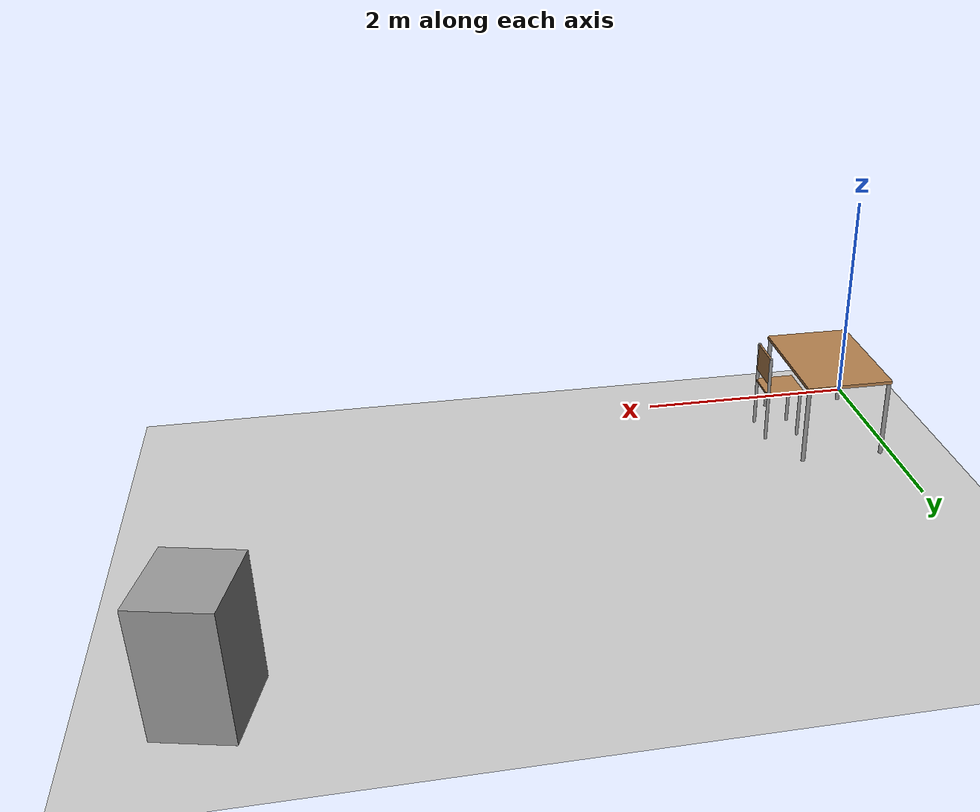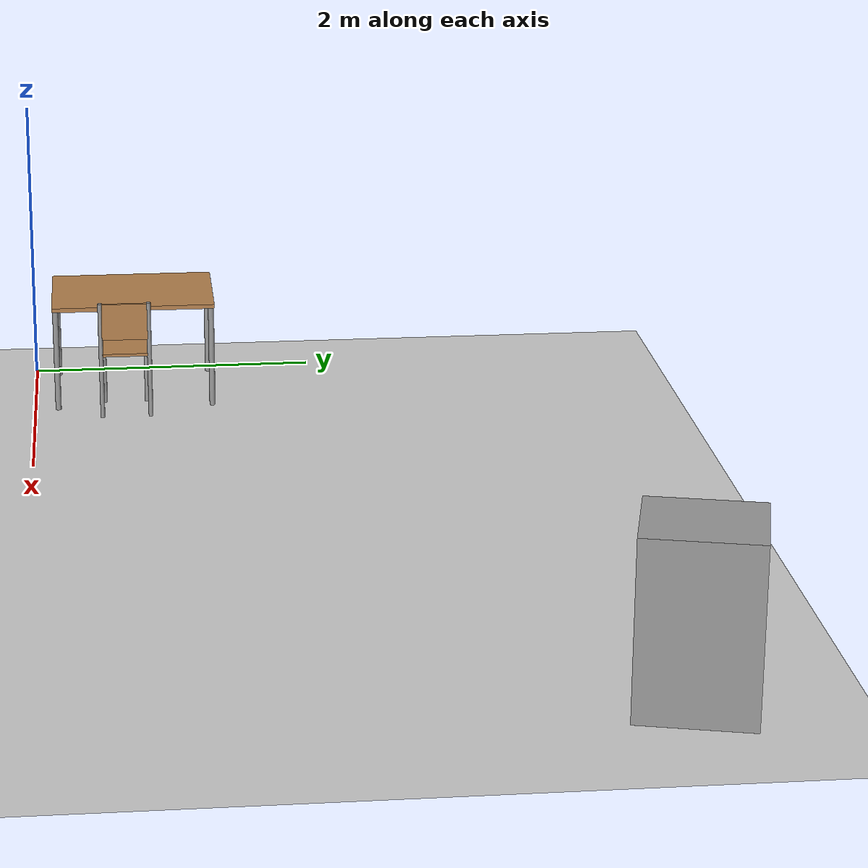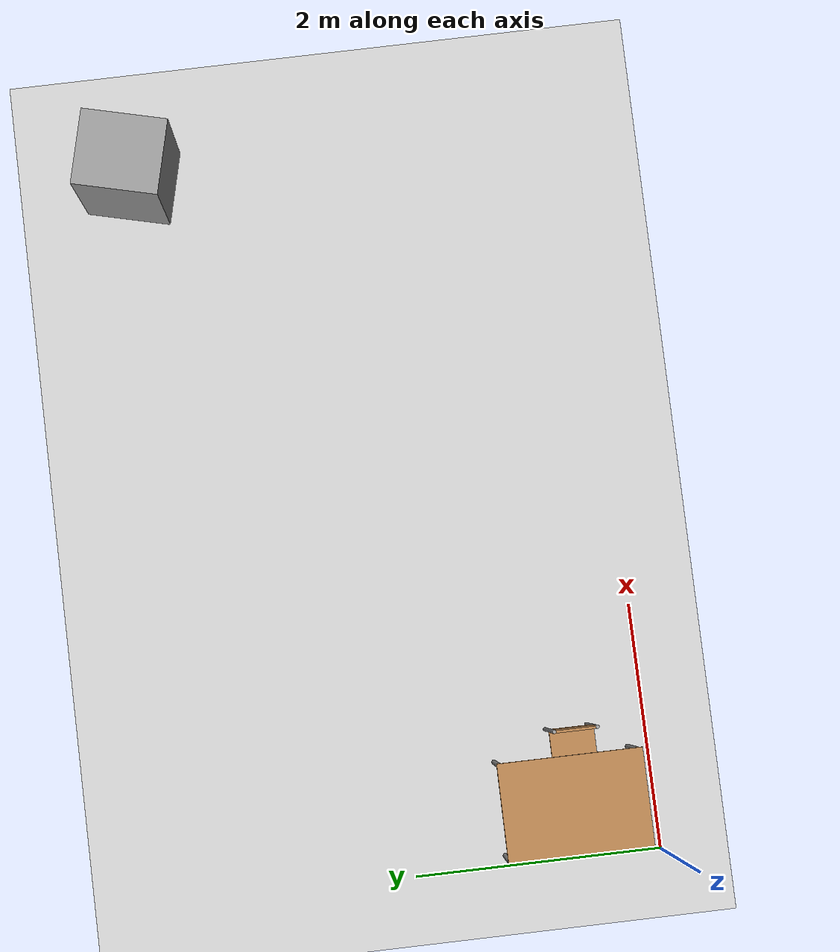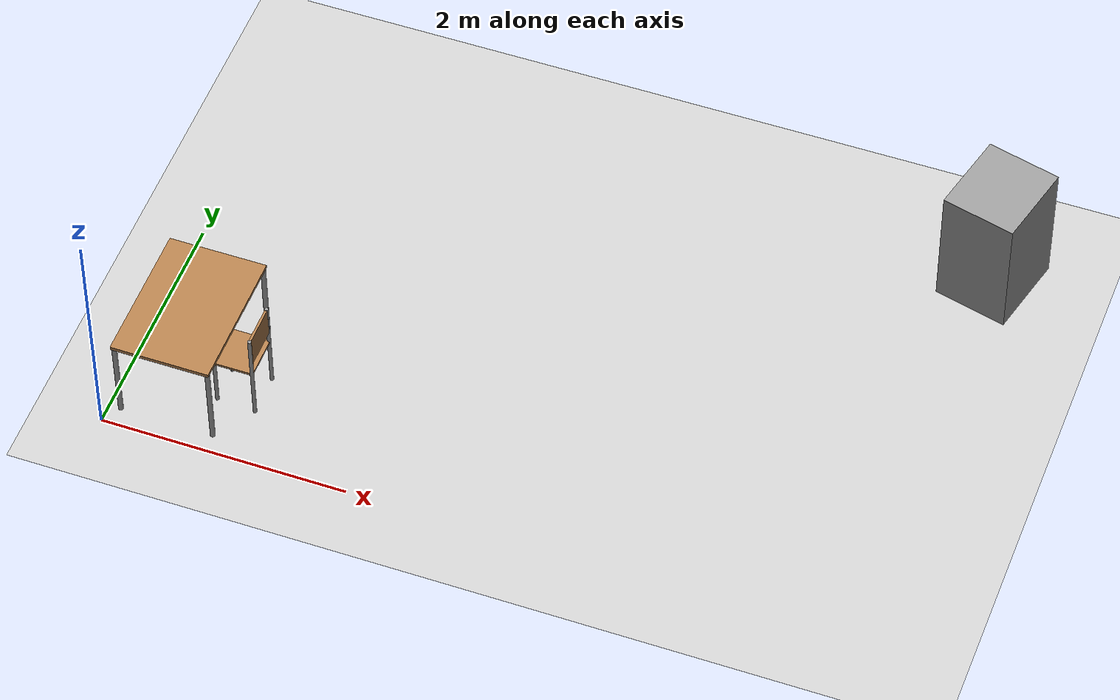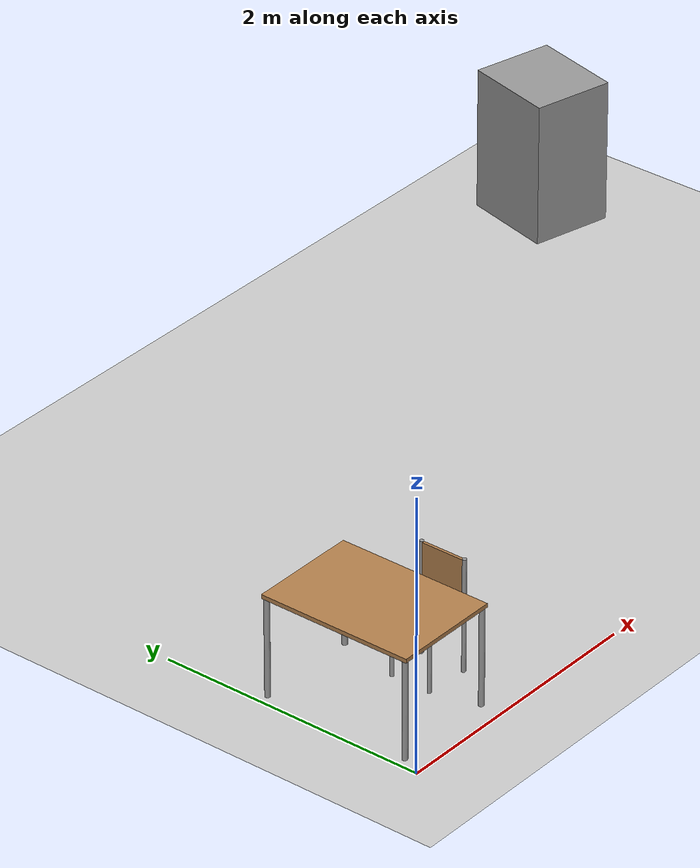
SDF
<sdf version="1.7">
 <world name="default">
  <model name="ground_plane">
   <static>1</static>
   <link name="link">
    <collision name="collision">
     <geometry><plane><normal>0 0 1</normal><size>100 100</size></plane></geometry>
     <surface>
      <contact><collide_bitmask>65535</collide_bitmask></contact>
      <friction><ode><mu>100</mu><mu2>50</mu2></ode></friction>
     </surface>
    </collision>
    <visual name="visual">
     <cast_shadows>0</cast_shadows>
     <geometry><plane><normal>0 0 1</normal><size>100 100</size></plane></geometry>
     <material>
      <script><uri>file://media/materials/scripts/gazebo.material</uri><name>Gazebo/Grey</name></script>
     </material>
    </visual>
   </link>
  </model>
  <model name="table_mod">
   <link name="link">
    <inertial>
     <mass>1</mass>
     <inertia><ixx>1</ixx><ixy>0</ixy><ixz>0</ixz><iyy>1</iyy><iyz>0</iyz><izz>1</izz></inertia>
    </inertial>
    <visual name="visual1">
     <pose>0 0 0.87 0 -0 0</pose>
     <geometry><box><size>1.15 0.8 0.03</size></box></geometry>
     <material>
      <script><uri>file://media/materials/scripts/gazebo.material</uri><name>Gazebo/Wood</name></script>
      <shader type="pixel"><normal_map>__default__</normal_map></shader>
      <ambient>1 1 1 1</ambient>
      <diffuse>1 1 1 1</diffuse>
      <specular>0.2 0.2 0.2 1</specular>
      <emissive>0 0 0 1</emissive>
     </material>
    </visual>
    <visual name="back_right_leg">
     <pose>-0.55 -0.38 0.5 0 -0 0</pose>
     <geometry><cylinder><radius>0.02</radius><length>0.75</length></cylinder></geometry>
     <material>
      <script><uri>file://media/materials/scripts/gazebo.material</uri><name>Gazebo/Grey</name></script>
      <shader type="pixel"><normal_map>__default__</normal_map></shader>
      <ambient>0.3 0.3 0.3 1</ambient>
      <diffuse>0.7 0.7 0.7 1</diffuse>
      <specular>0.01 0.01 0.01 1</specular>
      <emissive>0 0 0 1</emissive>
     </material>
    </visual>
    <visual name="front_right_leg">
     <pose>0.55 -0.38 0.5 0 -0 0</pose>
     <geometry><cylinder><radius>0.02</radius><length>0.75</length></cylinder></geometry>
     <material>
      <script><uri>file://media/materials/scripts/gazebo.material</uri><name>Gazebo/Grey</name></script>
      <shader type="pixel"><normal_map>__default__</normal_map></shader>
      <ambient>0.3 0.3 0.3 1</ambient>
      <diffuse>0.7 0.7 0.7 1</diffuse>
      <specular>0.01 0.01 0.01 1</specular>
      <emissive>0 0 0 1</emissive>
     </material>
    </visual>
    <visual name="back_left_leg">
     <pose>-0.55 0.38 0.5 0 -0 0</pose>
     <geometry><cylinder><radius>0.02</radius><length>0.75</length></cylinder></geometry>
     <material>
      <script><uri>file://media/materials/scripts/gazebo.material</uri><name>Gazebo/Grey</name></script>
      <shader type="pixel"><normal_map>__default__</normal_map></shader>
      <ambient>0.3 0.3 0.3 1</ambient>
      <diffuse>0.7 0.7 0.7 1</diffuse>
      <specular>0.01 0.01 0.01 1</specular>
      <emissive>0 0 0 1</emissive>
     </material>
    </visual>
    <visual name="front_left_leg">
     <pose>0.55 0.38 0.5 0 -0 0</pose>
     <geometry><cylinder><radius>0.02</radius><length>0.75</length></cylinder></geometry>
     <material>
      <script><uri>file://media/materials/scripts/gazebo.material</uri><name>Gazebo/Grey</name></script>
      <shader type="pixel"><normal_map>__default__</normal_map></shader>
      <ambient>0.3 0.3 0.3 1</ambient>
      <diffuse>0.7 0.7 0.7 1</diffuse>
      <specular>0.01 0.01 0.01 1</specular>
      <emissive>0 0 0 1</emissive>
     </material>
    </visual>
    <collision name="surface">
     <pose>0 0 0.87 0 -0 0</pose>
     <geometry><box><size>1.15 0.8 0.03</size></box></geometry>
     <surface>
      <friction>
       <ode><mu>0.6</mu><mu2>0.6</mu2><fdir1>0 0 0</fdir1><slip1>0</slip1><slip2>0</slip2></ode>
       <torsional>
        <coefficient>1</coefficient>
        <patch_radius>0</patch_radius>
        <surface_radius>0</surface_radius>
        <use_patch_radius>1</use_patch_radius>
        <ode><slip>0</slip></ode>
       </torsional>
      </friction>
      <bounce><restitution_coefficient>0</restitution_coefficient><threshold>1e+06</threshold></bounce>
      <contact>
       <collide_without_contact>0</collide_without_contact>
       <collide_without_contact_bitmask>1</collide_without_contact_bitmask>
       <collide_bitmask>1</collide_bitmask>
       <ode>
        <soft_cfm>0</soft_cfm>
        <soft_erp>0.2</soft_erp>
        <kp>1e+13</kp>
        <kd>1</kd>
        <max_vel>0.01</max_vel>
        <min_depth>0</min_depth>
       </ode>
       <bullet>
        <split_impulse>1</split_impulse>
        <split_impulse_penetration_threshold>-0.01</split_impulse_penetration_threshold>
        <soft_cfm>0</soft_cfm>
        <soft_erp>0.2</soft_erp>
        <kp>1e+13</kp>
        <kd>1</kd>
       </bullet>
      </contact>
     </surface>
    </collision>
    <collision name="back_right_leg">
     <pose>-0.55 -0.38 0.5 0 -0 0</pose>
     <geometry><cylinder><radius>0.02</radius><length>0.75</length></cylinder></geometry>
     <surface>
      <friction>
       <ode><mu>1</mu><mu2>1</mu2><fdir1>0 0 0</fdir1><slip1>0</slip1><slip2>0</slip2></ode>
       <torsional>
        <coefficient>1</coefficient>
        <patch_radius>0</patch_radius>
        <surface_radius>0</surface_radius>
        <use_patch_radius>1</use_patch_radius>
        <ode><slip>0</slip></ode>
       </torsional>
      </friction>
      <bounce><restitution_coefficient>0</restitution_coefficient><threshold>1e+06</threshold></bounce>
      <contact>
       <collide_without_contact>0</collide_without_contact>
       <collide_without_contact_bitmask>1</collide_without_contact_bitmask>
       <collide_bitmask>1</collide_bitmask>
       <ode>
        <soft_cfm>0</soft_cfm>
        <soft_erp>0.2</soft_erp>
        <kp>1e+13</kp>
        <kd>1</kd>
        <max_vel>0.01</max_vel>
        <min_depth>0</min_depth>
       </ode>
       <bullet>
        <split_impulse>1</split_impulse>
        <split_impulse_penetration_threshold>-0.01</split_impulse_penetration_threshold>
        <soft_cfm>0</soft_cfm>
        <soft_erp>0.2</soft_erp>
        <kp>1e+13</kp>
        <kd>1</kd>
       </bullet>
      </contact>
     </surface>
    </collision>
    <collision name="back_left_leg">
     <pose>-0.55 0.38 0.5 0 -0 0</pose>
     <geometry><cylinder><radius>0.02</radius><length>0.75</length></cylinder></geometry>
     <surface>
      <friction>
       <ode><mu>1</mu><mu2>1</mu2><fdir1>0 0 0</fdir1><slip1>0</slip1><slip2>0</slip2></ode>
       <torsional>
        <coefficient>1</coefficient>
        <patch_radius>0</patch_radius>
        <surface_radius>0</surface_radius>
        <use_patch_radius>1</use_patch_radius>
        <ode><slip>0</slip></ode>
       </torsional>
      </friction>
      <bounce><restitution_coefficient>0</restitution_coefficient><threshold>1e+06</threshold></bounce>
      <contact>
       <collide_without_contact>0</collide_without_contact>
       <collide_without_contact_bitmask>1</collide_without_contact_bitmask>
       <collide_bitmask>1</collide_bitmask>
       <ode>
        <soft_cfm>0</soft_cfm>
        <soft_erp>0.2</soft_erp>
        <kp>1e+13</kp>
        <kd>1</kd>
        <max_vel>0.01</max_vel>
        <min_depth>0</min_depth>
       </ode>
       <bullet>
        <split_impulse>1</split_impulse>
        <split_impulse_penetration_threshold>-0.01</split_impulse_penetration_threshold>
        <soft_cfm>0</soft_cfm>
        <soft_erp>0.2</soft_erp>
        <kp>1e+13</kp>
        <kd>1</kd>
       </bullet>
      </contact>
     </surface>
    </collision>
    <collision name="front_left_leg">
     <pose>0.55 0.38 0.5 0 -0 0</pose>
     <geometry><cylinder><radius>0.02</radius><length>0.75</length></cylinder></geometry>
     <surface>
      <friction>
       <ode><mu>1</mu><mu2>1</mu2><fdir1>0 0 0</fdir1><slip1>0</slip1><slip2>0</slip2></ode>
       <torsional>
        <coefficient>1</coefficient>
        <patch_radius>0</patch_radius>
        <surface_radius>0</surface_radius>
        <use_patch_radius>1</use_patch_radius>
        <ode><slip>0</slip></ode>
       </torsional>
      </friction>
      <bounce><restitution_coefficient>0</restitution_coefficient><threshold>1e+06</threshold></bounce>
      <contact>
       <collide_without_contact>0</collide_without_contact>
       <collide_without_contact_bitmask>1</collide_without_contact_bitmask>
       <collide_bitmask>1</collide_bitmask>
       <ode>
        <soft_cfm>0</soft_cfm>
        <soft_erp>0.2</soft_erp>
        <kp>1e+13</kp>
        <kd>1</kd>
        <max_vel>0.01</max_vel>
        <min_depth>0</min_depth>
       </ode>
       <bullet>
        <split_impulse>1</split_impulse>
        <split_impulse_penetration_threshold>-0.01</split_impulse_penetration_threshold>
        <soft_cfm>0</soft_cfm>
        <soft_erp>0.2</soft_erp>
        <kp>1e+13</kp>
        <kd>1</kd>
       </bullet>
      </contact>
     </surface>
    </collision>
    <collision name="front_right_leg">
     <pose>0.55 -0.38 0.5 0 -0 0</pose>
     <geometry><cylinder><radius>0.02</radius><length>0.75</length></cylinder></geometry>
     <surface>
      <friction>
       <ode><mu>1</mu><mu2>1</mu2><fdir1>0 0 0</fdir1><slip1>0</slip1><slip2>0</slip2></ode>
       <torsional>
        <coefficient>1</coefficient>
        <patch_radius>0</patch_radius>
        <surface_radius>0</surface_radius>
        <use_patch_radius>1</use_patch_radius>
        <ode><slip>0</slip></ode>
       </torsional>
      </friction>
      <bounce><restitution_coefficient>0</restitution_coefficient><threshold>1e+06</threshold></bounce>
      <contact>
       <collide_without_contact>0</collide_without_contact>
       <collide_without_contact_bitmask>1</collide_without_contact_bitmask>
       <collide_bitmask>1</collide_bitmask>
       <ode>
        <soft_cfm>0</soft_cfm>
        <soft_erp>0.2</soft_erp>
        <kp>1e+13</kp>
        <kd>1</kd>
        <max_vel>0.01</max_vel>
        <min_depth>0</min_depth>
       </ode>
       <bullet>
        <split_impulse>1</split_impulse>
        <split_impulse_penetration_threshold>-0.01</split_impulse_penetration_threshold>
        <soft_cfm>0</soft_cfm>
        <soft_erp>0.2</soft_erp>
        <kp>1e+13</kp>
        <kd>1</kd>
       </bullet>
      </contact>
     </surface>
    </collision>
   </link>
   <static>1</static>
   <pose>0.467778 0.712362 -0.134214 0 0 -1.5708</pose>
  </model>
  <model name="chair_mod_0_clone">
   <link name="link">
    <inertial>
     <mass>1</mass>
     <inertia><ixx>1</ixx><ixy>0</ixy><ixz>0</ixz><iyy>1</iyy><iyz>0</iyz><izz>1</izz></inertia>
    </inertial>
    <visual name="back_right_leg">
     <pose>-0.17 -0.17 0.42 0 -0 0</pose>
     <geometry><cylinder><radius>0.015</radius><length>0.84</length></cylinder></geometry>
     <material>
      <script><uri>file://media/materials/scripts/gazebo.material</uri><name>Gazebo/Grey</name></script>
      <shader type="pixel"><normal_map>__default__</normal_map></shader>
      <ambient>0.3 0.3 0.3 1</ambient>
      <diffuse>0.7 0.7 0.7 1</diffuse>
      <specular>0.01 0.01 0.01 1</specular>
      <emissive>0 0 0 1</emissive>
     </material>
    </visual>
    <visual name="back_left_leg">
     <pose>-0.15 0.15 0.23 0 -0 0</pose>
     <geometry><cylinder><radius>0.015</radius><length>0.46</length></cylinder></geometry>
     <material>
      <script><uri>file://media/materials/scripts/gazebo.material</uri><name>Gazebo/Grey</name></script>
      <shader type="pixel"><normal_map>__default__</normal_map></shader>
      <ambient>0.3 0.3 0.3 1</ambient>
      <diffuse>0.7 0.7 0.7 1</diffuse>
      <specular>0.01 0.01 0.01 1</specular>
      <emissive>0 0 0 1</emissive>
     </material>
    </visual>
    <visual name="visual1">
     <pose>0 0 0.46 0 -0 0</pose>
     <geometry><box><size>0.36 0.36 0.02</size></box></geometry>
     <material>
      <script><uri>file://media/materials/scripts/gazebo.material</uri><name>Gazebo/Wood</name></script>
      <shader type="pixel"><normal_map>__default__</normal_map></shader>
      <ambient>1 1 1 1</ambient>
      <diffuse>1 1 1 1</diffuse>
      <specular>0.2 0.2 0.2 1</specular>
      <emissive>0 0 0 1</emissive>
     </material>
    </visual>
    <visual name="ModelPreview_1::link::visual_5">
     <pose>0 -0.17 0.705 1.56 -0 0</pose>
     <geometry><box><size>0.36 0.26 0.02</size></box></geometry>
     <material>
      <script><uri>file://media/materials/scripts/gazebo.material</uri><name>Gazebo/Wood</name></script>
      <shader type="pixel"><normal_map>__default__</normal_map></shader>
      <ambient>1 1 1 1</ambient>
      <diffuse>1 1 1 1</diffuse>
      <specular>0.2 0.2 0.2 1</specular>
      <emissive>0 0 0 1</emissive>
     </material>
    </visual>
    <visual name="front_left_leg">
     <pose>0.15 0.15 0.23 0 -0 0</pose>
     <geometry><cylinder><radius>0.015</radius><length>0.46</length></cylinder></geometry>
     <material>
      <script><uri>file://media/materials/scripts/gazebo.material</uri><name>Gazebo/Grey</name></script>
      <shader type="pixel"><normal_map>__default__</normal_map></shader>
      <ambient>0.3 0.3 0.3 1</ambient>
      <diffuse>0.7 0.7 0.7 1</diffuse>
      <specular>0.01 0.01 0.01 1</specular>
      <emissive>0 0 0 1</emissive>
     </material>
    </visual>
    <visual name="front_right_leg">
     <pose>0.17 -0.17 0.42 0 -0 0</pose>
     <geometry><cylinder><radius>0.015</radius><length>0.84</length></cylinder></geometry>
     <material>
      <script><uri>file://media/materials/scripts/gazebo.material</uri><name>Gazebo/Grey</name></script>
      <shader type="pixel"><normal_map>__default__</normal_map></shader>
      <ambient>0.3 0.3 0.3 1</ambient>
      <diffuse>0.7 0.7 0.7 1</diffuse>
      <specular>0.01 0.01 0.01 1</specular>
      <emissive>0 0 0 1</emissive>
     </material>
    </visual>
    <collision name="front_right_leg">
     <pose>0.17 -0.17 0.42 0 -0 0</pose>
     <geometry><cylinder><radius>0.015</radius><length>0.84</length></cylinder></geometry>
     <surface>
      <friction>
       <ode><mu>1</mu><mu2>1</mu2><fdir1>0 0 0</fdir1><slip1>0</slip1><slip2>0</slip2></ode>
       <torsional>
        <coefficient>1</coefficient>
        <patch_radius>0</patch_radius>
        <surface_radius>0</surface_radius>
        <use_patch_radius>1</use_patch_radius>
        <ode><slip>0</slip></ode>
       </torsional>
      </friction>
      <bounce><restitution_coefficient>0</restitution_coefficient><threshold>1e+06</threshold></bounce>
      <contact>
       <collide_without_contact>0</collide_without_contact>
       <collide_without_contact_bitmask>1</collide_without_contact_bitmask>
       <collide_bitmask>1</collide_bitmask>
       <ode>
        <soft_cfm>0</soft_cfm>
        <soft_erp>0.2</soft_erp>
        <kp>1e+13</kp>
        <kd>1</kd>
        <max_vel>0.01</max_vel>
        <min_depth>0</min_depth>
       </ode>
       <bullet>
        <split_impulse>1</split_impulse>
        <split_impulse_penetration_threshold>-0.01</split_impulse_penetration_threshold>
        <soft_cfm>0</soft_cfm>
        <soft_erp>0.2</soft_erp>
        <kp>1e+13</kp>
        <kd>1</kd>
       </bullet>
      </contact>
     </surface>
    </collision>
    <collision name="back_right_leg">
     <pose>-0.17 -0.17 0.42 0 -0 0</pose>
     <geometry><cylinder><radius>0.015</radius><length>0.84</length></cylinder></geometry>
     <surface>
      <friction>
       <ode><mu>1</mu><mu2>1</mu2><fdir1>0 0 0</fdir1><slip1>0</slip1><slip2>0</slip2></ode>
       <torsional>
        <coefficient>1</coefficient>
        <patch_radius>0</patch_radius>
        <surface_radius>0</surface_radius>
        <use_patch_radius>1</use_patch_radius>
        <ode><slip>0</slip></ode>
       </torsional>
      </friction>
      <bounce><restitution_coefficient>0</restitution_coefficient><threshold>1e+06</threshold></bounce>
      <contact>
       <collide_without_contact>0</collide_without_contact>
       <collide_without_contact_bitmask>1</collide_without_contact_bitmask>
       <collide_bitmask>1</collide_bitmask>
       <ode>
        <soft_cfm>0</soft_cfm>
        <soft_erp>0.2</soft_erp>
        <kp>1e+13</kp>
        <kd>1</kd>
        <max_vel>0.01</max_vel>
        <min_depth>0</min_depth>
       </ode>
       <bullet>
        <split_impulse>1</split_impulse>
        <split_impulse_penetration_threshold>-0.01</split_impulse_penetration_threshold>
        <soft_cfm>0</soft_cfm>
        <soft_erp>0.2</soft_erp>
        <kp>1e+13</kp>
        <kd>1</kd>
       </bullet>
      </contact>
     </surface>
    </collision>
    <collision name="back_left_leg">
     <pose>-0.15 0.15 0.23 0 -0 0</pose>
     <geometry><cylinder><radius>0.015</radius><length>0.46</length></cylinder></geometry>
     <surface>
      <friction>
       <ode><mu>1</mu><mu2>1</mu2><fdir1>0 0 0</fdir1><slip1>0</slip1><slip2>0</slip2></ode>
       <torsional>
        <coefficient>1</coefficient>
        <patch_radius>0</patch_radius>
        <surface_radius>0</surface_radius>
        <use_patch_radius>1</use_patch_radius>
        <ode><slip>0</slip></ode>
       </torsional>
      </friction>
      <bounce><restitution_coefficient>0</restitution_coefficient><threshold>1e+06</threshold></bounce>
      <contact>
       <collide_without_contact>0</collide_without_contact>
       <collide_without_contact_bitmask>1</collide_without_contact_bitmask>
       <collide_bitmask>1</collide_bitmask>
       <ode>
        <soft_cfm>0</soft_cfm>
        <soft_erp>0.2</soft_erp>
        <kp>1e+13</kp>
        <kd>1</kd>
        <max_vel>0.01</max_vel>
        <min_depth>0</min_depth>
       </ode>
       <bullet>
        <split_impulse>1</split_impulse>
        <split_impulse_penetration_threshold>-0.01</split_impulse_penetration_threshold>
        <soft_cfm>0</soft_cfm>
        <soft_erp>0.2</soft_erp>
        <kp>1e+13</kp>
        <kd>1</kd>
       </bullet>
      </contact>
     </surface>
    </collision>
    <collision name="collision_6">
     <pose>0 -0.17 0.705 1.56 -0 0</pose>
     <geometry><box><size>0.36 0.26 0.03</size></box></geometry>
     <surface>
      <friction>
       <ode><mu>1</mu><mu2>1</mu2><fdir1>0 0 0</fdir1><slip1>0</slip1><slip2>0</slip2></ode>
       <torsional>
        <coefficient>1</coefficient>
        <patch_radius>0</patch_radius>
        <surface_radius>0</surface_radius>
        <use_patch_radius>1</use_patch_radius>
        <ode><slip>0</slip></ode>
       </torsional>
      </friction>
      <bounce><restitution_coefficient>0</restitution_coefficient><threshold>1e+06</threshold></bounce>
      <contact>
       <collide_without_contact>0</collide_without_contact>
       <collide_without_contact_bitmask>1</collide_without_contact_bitmask>
       <collide_bitmask>1</collide_bitmask>
       <ode>
        <soft_cfm>0</soft_cfm>
        <soft_erp>0.2</soft_erp>
        <kp>1e+13</kp>
        <kd>1</kd>
        <max_vel>0.01</max_vel>
        <min_depth>0</min_depth>
       </ode>
       <bullet>
        <split_impulse>1</split_impulse>
        <split_impulse_penetration_threshold>-0.01</split_impulse_penetration_threshold>
        <soft_cfm>0</soft_cfm>
        <soft_erp>0.2</soft_erp>
        <kp>1e+13</kp>
        <kd>1</kd>
       </bullet>
      </contact>
     </surface>
    </collision>
    <collision name="surface">
     <pose>0 0 0.46 0 -0 0</pose>
     <geometry><box><size>0.36 0.36 0.03</size></box></geometry>
     <surface>
      <friction>
       <ode><mu>0.6</mu><mu2>0.6</mu2><fdir1>0 0 0</fdir1><slip1>0</slip1><slip2>0</slip2></ode>
       <torsional>
        <coefficient>1</coefficient>
        <patch_radius>0</patch_radius>
        <surface_radius>0</surface_radius>
        <use_patch_radius>1</use_patch_radius>
        <ode><slip>0</slip></ode>
       </torsional>
      </friction>
      <bounce><restitution_coefficient>0</restitution_coefficient><threshold>1e+06</threshold></bounce>
      <contact>
       <collide_without_contact>0</collide_without_contact>
       <collide_without_contact_bitmask>1</collide_without_contact_bitmask>
       <collide_bitmask>1</collide_bitmask>
       <ode>
        <soft_cfm>0</soft_cfm>
        <soft_erp>0.2</soft_erp>
        <kp>1e+13</kp>
        <kd>1</kd>
        <max_vel>0.01</max_vel>
        <min_depth>0</min_depth>
       </ode>
       <bullet>
        <split_impulse>1</split_impulse>
        <split_impulse_penetration_threshold>-0.01</split_impulse_penetration_threshold>
        <soft_cfm>0</soft_cfm>
        <soft_erp>0.2</soft_erp>
        <kp>1e+13</kp>
        <kd>1</kd>
       </bullet>
      </contact>
     </surface>
    </collision>
    <collision name="front_left_leg">
     <pose>0.15 0.15 0.23 0 -0 0</pose>
     <geometry><cylinder><radius>0.015</radius><length>0.46</length></cylinder></geometry>
     <surface>
      <friction>
       <ode><mu>1</mu><mu2>1</mu2><fdir1>0 0 0</fdir1><slip1>0</slip1><slip2>0</slip2></ode>
       <torsional>
        <coefficient>1</coefficient>
        <patch_radius>0</patch_radius>
        <surface_radius>0</surface_radius>
        <use_patch_radius>1</use_patch_radius>
        <ode><slip>0</slip></ode>
       </torsional>
      </friction>
      <bounce><restitution_coefficient>0</restitution_coefficient><threshold>1e+06</threshold></bounce>
      <contact>
       <collide_without_contact>0</collide_without_contact>
       <collide_without_contact_bitmask>1</collide_without_contact_bitmask>
       <collide_bitmask>1</collide_bitmask>
       <ode>
        <soft_cfm>0</soft_cfm>
        <soft_erp>0.2</soft_erp>
        <kp>1e+13</kp>
        <kd>1</kd>
        <max_vel>0.01</max_vel>
        <min_depth>0</min_depth>
       </ode>
       <bullet>
        <split_impulse>1</split_impulse>
        <split_impulse_penetration_threshold>-0.01</split_impulse_penetration_threshold>
        <soft_cfm>0</soft_cfm>
        <soft_erp>0.2</soft_erp>
        <kp>1e+13</kp>
        <kd>1</kd>
       </bullet>
      </contact>
     </surface>
    </collision>
   </link>
   <static>1</static>
   <pose>0.896658 0.64663 0 0 -0 1.5708</pose>
  </model>
  <model name="caisse">
   <link name="link">
    <inertial>
     <mass>1</mass>
     <inertia>
      <ixx>0.166667</ixx>
      <ixy>0</ixy>
      <ixz>0</ixz>
      <iyy>0.166667</iyy>
      <iyz>0</iyz>
      <izz>0.166667</izz>
     </inertia>
    </inertial>
    <pose>3.96333 5.67898 0 0 -0 -0.243419</pose>
    <visual name="visual">
     <geometry><box><size>0.61 0.69 1.15</size></box></geometry>
     <material>
      <script><name>Gazebo/Grey</name><uri>file://media/materials/scripts/gazebo.material</uri></script>
      <shader type="pixel"><normal_map>__default__</normal_map></shader>
      <ambient>0.333 0.341 0.325 1</ambient>
      <diffuse>0.333 0.341 0.325 1</diffuse>
      <specular>0.333 0.341 0.325 1</specular>
      <emissive>0 0 0 1</emissive>
     </material>
    </visual>
    <collision name="collision">
     <geometry><box><size>0.61 0.69 1.15</size></box></geometry>
     <surface>
      <friction>
       <ode><mu>1</mu><mu2>1</mu2><fdir1>0 0 0</fdir1><slip1>0</slip1><slip2>0</slip2></ode>
       <torsional>
        <coefficient>1</coefficient>
        <patch_radius>0</patch_radius>
        <surface_radius>0</surface_radius>
        <use_patch_radius>1</use_patch_radius>
        <ode><slip>0</slip></ode>
       </torsional>
      </friction>
      <bounce><restitution_coefficient>0</restitution_coefficient><threshold>1e+06</threshold></bounce>
      <contact>
       <collide_without_contact>0</collide_without_contact>
       <collide_without_contact_bitmask>1</collide_without_contact_bitmask>
       <collide_bitmask>1</collide_bitmask>
       <ode>
        <soft_cfm>0</soft_cfm>
        <soft_erp>0.2</soft_erp>
        <kp>1e+13</kp>
        <kd>1</kd>
        <max_vel>0.01</max_vel>
        <min_depth>0</min_depth>
       </ode>
       <bullet>
        <split_impulse>1</split_impulse>
        <split_impulse_penetration_threshold>-0.01</split_impulse_penetration_threshold>
        <soft_cfm>0</soft_cfm>
        <soft_erp>0.2</soft_erp>
        <kp>1e+13</kp>
        <kd>1</kd>
       </bullet>
      </contact>
     </surface>
    </collision>
   </link>
   <static>0</static>
   <pose>2.00914 -2.01006 0.5 0 -0 0</pose>
  </model>
 </world>
</sdf>
